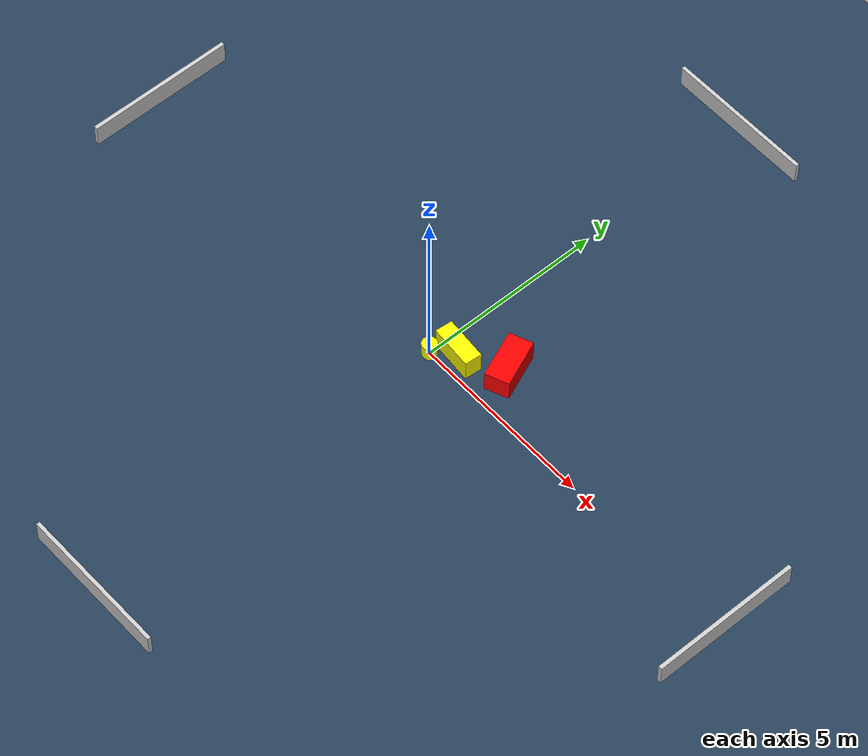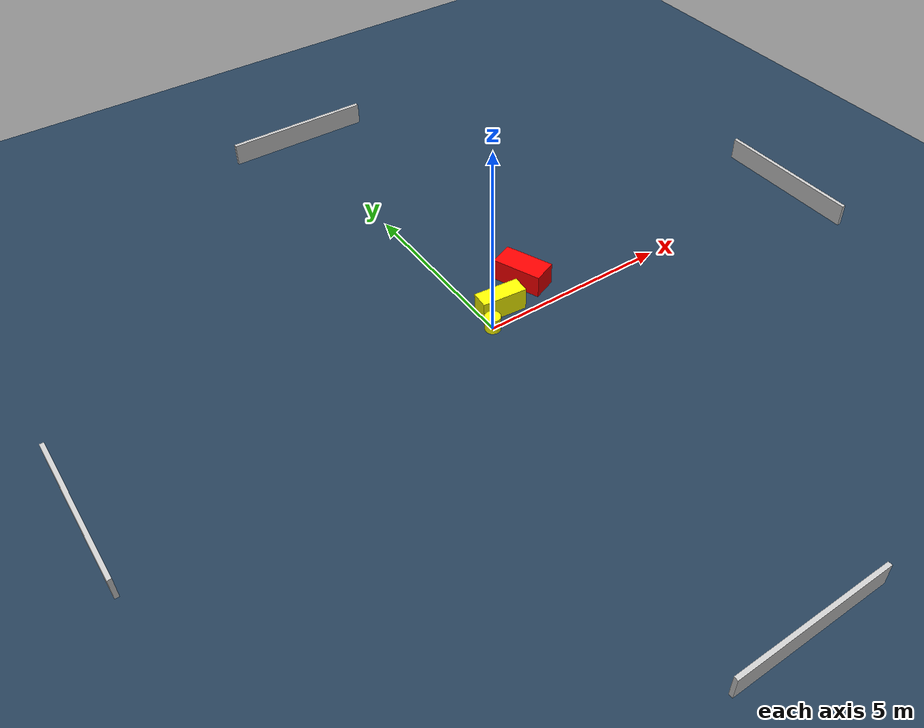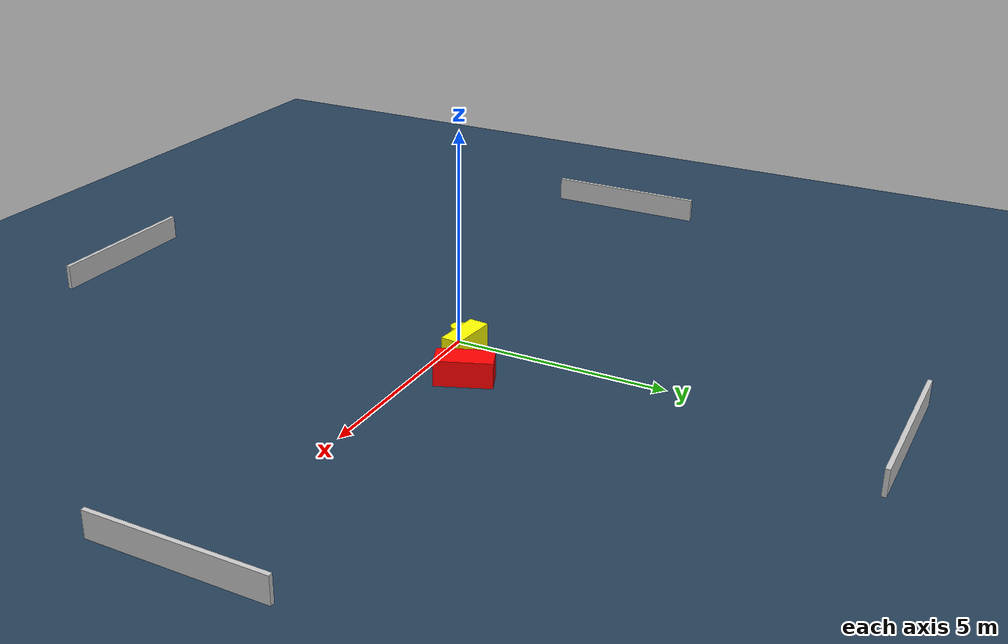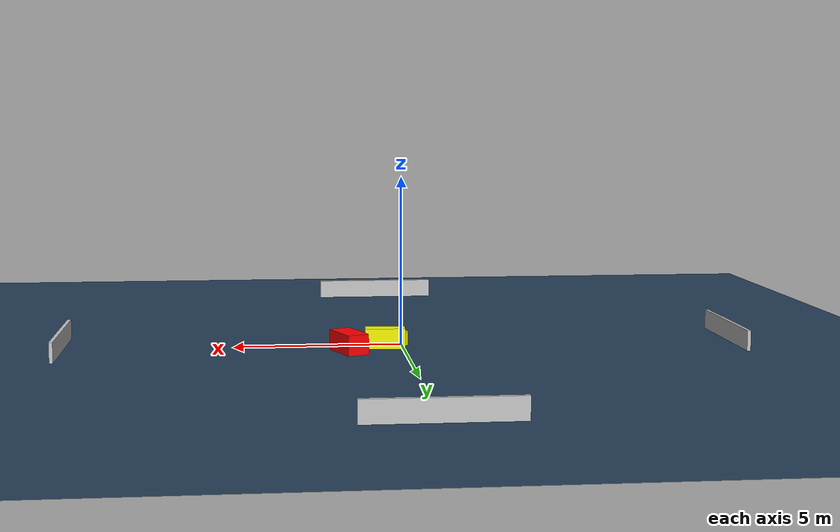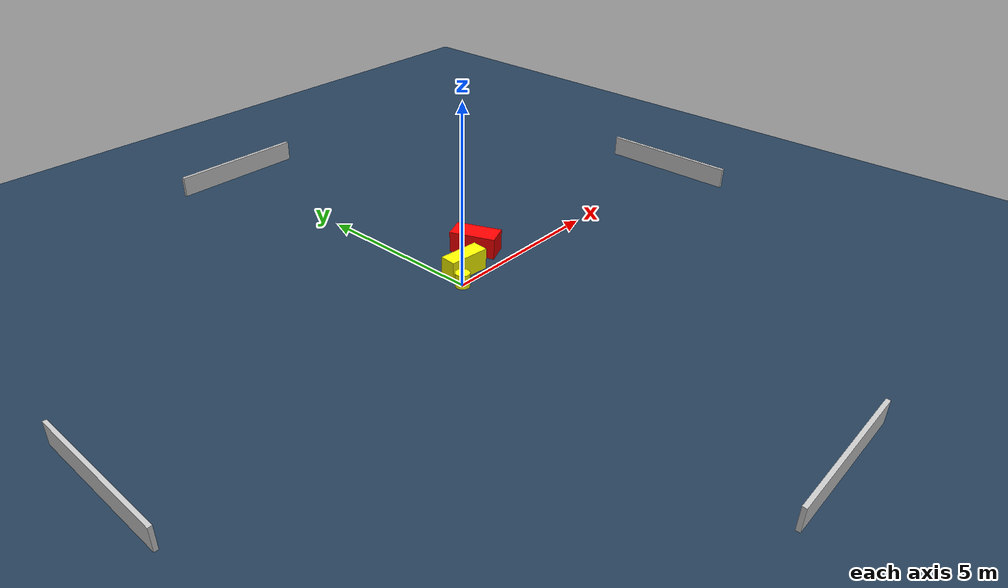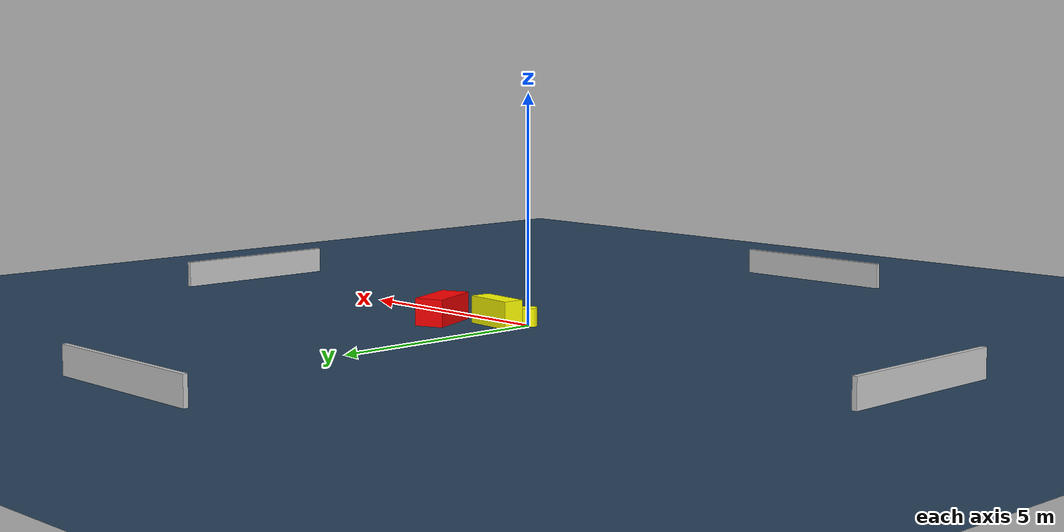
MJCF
<?xml version="1.0" ?>
<mujoco model="generated_environment">
  <option timestep="0.01" integrator="RK4" cone="elliptic"/>
  <default>
    <geom density="1"/>
  </default>
  <asset>
    <texture builtin="gradient" height="3072" name="skybox" rgb1="0.3 0.5 0.7" rgb2="0 0 0" type="skybox" width="512"/>
    <texture builtin="checker" height="300" name="groundplane" rgb1="0.2 0.3 0.4" rgb2="0.1 0.2 0.3" type="2d" width="300"/>
    <material name="groundplane" reflectance="0.2" texrepeat="5 5" texture="groundplane"/>
  </asset>
  <worldbody>
    <light dir="0 0 -1" directional="true" pos="0 0 1.5"/>
    <geom condim="3" friction="0.5 0.005 0.001" material="groundplane" name="floor" pos="0 0 0" size="0 0 0.05" type="plane"/>
    <body name="walls">
      <geom name="wall_1" condim="4" pos="-10.0 0.0 0.3" rgba="0.800000011920929 0.800000011920929 0.800000011920929 1.0" size="0.05 2.0 0.3" type="box"/>
      <geom name="wall_2" condim="4" pos="10.0 0.0 0.3" rgba="0.800000011920929 0.800000011920929 0.800000011920929 1.0" size="0.05 2.0 0.3" type="box"/>
      <geom name="wall_3" condim="4" pos="0.0 -10.0 0.3" rgba="0.800000011920929 0.800000011920929 0.800000011920929 1.0" size="2.0 0.05 0.3" type="box"/>
      <geom name="wall_4" condim="4" pos="0.0 10.0 0.3" rgba="0.800000011920929 0.800000011920929 0.800000011920929 1.0" size="2.0 0.05 0.3" type="box"/>
    </body>
    <body name="robot">
      <joint name="joint_x" type="slide" pos="0 0 0" axis="1 0 0"/>
      <joint name="joint_y" type="slide" pos="0 0 0" axis="0 1 0"/>
      <geom name="robot" type="cylinder" pos="0.0 0.0 0.2" size="0.2 0.2 0.0" mass="5.0" friction="1.0 0.005 0.0001" condim="4" rgba="1.0 1.0 0.0 1.0"/>
    </body>
    <body name="obstacle_1_movable">
      <geom name="obstacle_1_movable" condim="4" pos="0.5271812950929794 0.4312524317099182 0.3" euler="0 0 354.9113641302646" friction="0.0 0.005 0.001" rgba="1.0 1.0 0.0 1.0" size="0.5868541097962467 0.23180763255465908 0.3" type="box" mass="0.1"/>
      <joint type="free"/>
    </body>
    <body name="obstacle_2_static">
      <geom name="obstacle_2_static" condim="4" pos="1.6351787389799886 1.0217221761174986 0.3" euler="0 0 112.14686239688402" friction="0.0 0.005 0.001" rgba="1.0 0.0 0.0 1.0" size="0.6487548731125603 0.32367945089132466 0.3" type="box"/>
    </body>
  </worldbody>
  <actuator>
    <motor name="actuator_x" joint="joint_x" gear="1" ctrlrange="-1 1"/>
    <motor name="actuator_y" joint="joint_y" gear="1" ctrlrange="-1 1"/>
  </actuator>
</mujoco>
